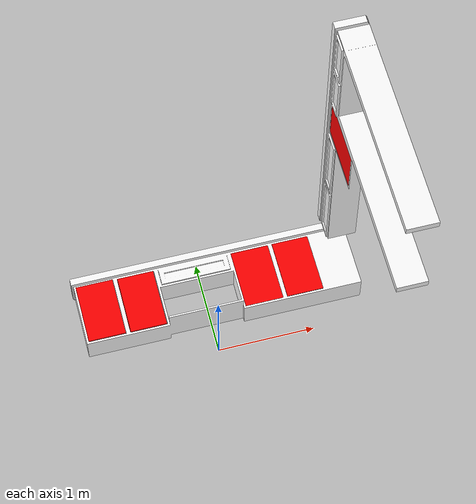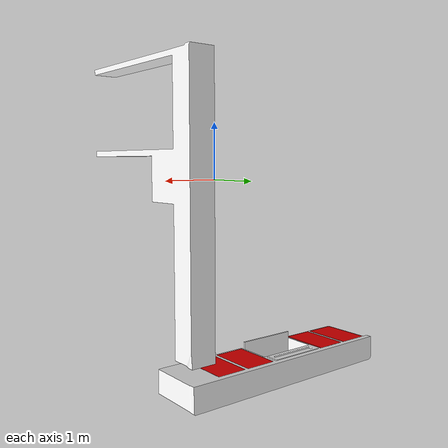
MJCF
<mujoco model="UpperCabinets_22fd18a8">
  <compiler autolimits="true" boundmass="0.01" angle="radian"/>
  <default>
    <default class="/">
      <default class="__VISUAL_MJT__">
        <geom contype="0" conaffinity="0" group="0" mass="1e-08"/>
      </default>
      <default class="__STRUCTURAL_MJT__">
        <geom contype="8" conaffinity="15" group="4" friction="0.90000000000000002 0.90000000000000002 0.001" density="500" solref="0.025000000000000001 1" solimp="0.998 0.998 0.001"/>
      </default>
      <default class="__DYNAMIC_MJT__">
        <geom contype="1" conaffinity="15" group="4" friction="0.90000000000000002 0.90000000000000002 0.001" density="500" solref="0.025000000000000001 1" solimp="0.998 0.998 0.001"/>
      </default>
      <default class="__ARTICULABLE_DYNAMIC_MJT__">
        <geom contype="0" conaffinity="7" group="4" friction="0.90000000000000002 0.90000000000000002 0.001" density="500" solref="0.025000000000000001 1" solimp="0.998 0.998 0.001"/>
      </default>
    </default>
  </default>
  <asset>
    <material name="material_WhiteWoodClean" class="/" specular="0.5" shininess="0.5" rgba="1 1 1 1"/>
    <mesh name="UpperCabinets_22fd18a8_UpperCabinets_22fd18a8" class="/" file="UpperCabinets_22fd18a8_UpperCabinets_22fd18a8/UpperCabinets_22fd18a8_UpperCabinets_22fd18a8.obj" scale="1 1 1" inertia="legacy"/>
  </asset>
  <worldbody>
    <body name="UpperCabinets_22fd18a8">
      <body name="UpperCabinets_22fd18a8_UpperCabinets_22fd18a8" pos="-0 0 0" quat="1 0 0 0">
        <geom name="UpperCabinets_22fd18a8_UpperCabinets_22fd18a8" class="__VISUAL_MJT__" type="mesh" material="material_WhiteWoodClean" mesh="UpperCabinets_22fd18a8_UpperCabinets_22fd18a8"/>
        <site name="UpperCabinets_22fd18a8_UpperCabinets_22fd18a8_Receptacle_0" class="/" type="box" rgba="1 0 0 1" size="0.22385676205158234 0.36528986692428589 0.14533472061157227" pos="-0.95181053876876831 2.0162899494171143 -2.6006653308868408" quat="0 1 0 0"/>
        <site name="UpperCabinets_22fd18a8_UpperCabinets_22fd18a8_Receptacle_1" class="/" type="box" rgba="1 0 0 1" size="0.21943353116512299 0.36130154132843018 0.14265561103820801" pos="-0.45112630724906921 2.0113015174865723 -2.596644401550293" quat="0 1 0 0"/>
        <site name="UpperCabinets_22fd18a8_UpperCabinets_22fd18a8_Receptacle_2" class="/" type="box" rgba="1 0 0 1" size="0.23100362718105316 0.36549067497253418 0.14396512508392334" pos="0.9558873176574707 2.0117907524108887 -2.6047348976135254" quat="0 1 0 0"/>
        <site name="UpperCabinets_22fd18a8_UpperCabinets_22fd18a8_Receptacle_3" class="/" type="box" rgba="1 0 0 1" size="0.2211918830871582 0.36378130316734314 0.14652752876281738" pos="1.4570145606994629 2.012099027633667 -2.6046090126037598" quat="0 1 0 0"/>
        <site name="UpperCabinets_22fd18a8_UpperCabinets_22fd18a8_Receptacle_4" class="/" type="box" rgba="1 0 0 1" size="0.28206542134284973 0.37078210711479187 0.14987480640411377" pos="2.0118317604064941 2.0093469619750977 0.10080169141292572" quat="0 0.70710678118654757 0 0.70710678118654757"/>
        <geom name="UpperCabinets_22fd18a8_UpperCabinets_22fd18a8_PrimitiveCollider_0" class="__DYNAMIC_MJT__" type="box" size="0.023277163505554199 0.37876635789871216 0.2889653742313385" rgba="0 1 0 1" pos="2.1670336723327637 2.0140774250030518 0.10151279717683792" quat="0 1 0 0"/>
        <geom name="UpperCabinets_22fd18a8_UpperCabinets_22fd18a8_PrimitiveCollider_1" class="__DYNAMIC_MJT__" type="box" size="0.17035567760467529 0.40167140960693359 0.02003788948059082" rgba="0 1 0 1" pos="2.0273337364196777 2.017939567565918 -0.18299999833106995" quat="0 1 0 0"/>
        <geom name="UpperCabinets_22fd18a8_UpperCabinets_22fd18a8_PrimitiveCollider_2" class="__DYNAMIC_MJT__" type="box" size="0.16783219575881958 0.016549214720726013 0.30587506294250488" rgba="0 1 0 1" pos="2.0224788188934326 1.628077507019043 0.10089156776666641" quat="0 1 0 0"/>
        <geom name="UpperCabinets_22fd18a8_UpperCabinets_22fd18a8_PrimitiveCollider_3" class="__DYNAMIC_MJT__" type="box" size="0.17035567760467529 1.0793757438659668 0.027918152511119843" rgba="0 1 0 1" pos="2.0273337364196777 1.0834207534790039 0.43566557765007019" quat="0 1 0 0"/>
        <geom name="UpperCabinets_22fd18a8_UpperCabinets_22fd18a8_PrimitiveCollider_4" class="__DYNAMIC_MJT__" type="box" size="0.17035567760467529 1.0793757438659668 0.027918152511119843" rgba="0 1 0 1" pos="2.0273337364196777 1.0834207534790039 1.6336655616760254" quat="0 1 0 0"/>
        <geom name="UpperCabinets_22fd18a8_UpperCabinets_22fd18a8_PrimitiveCollider_5" class="__DYNAMIC_MJT__" type="box" size="0.17799121141433716 0.052411410957574844 1.9639127254486084" rgba="0 1 0 1" pos="2.012319803237915 2.449049711227417 -0.25810611248016357" quat="0 1 0 0"/>
        <geom name="UpperCabinets_22fd18a8_UpperCabinets_22fd18a8_PrimitiveCollider_6" class="__DYNAMIC_MJT__" type="box" size="0.17035567760467529 0.40167140960693359 0.02003788948059082" rgba="0 1 0 1" pos="2.0273337364196777 2.017939567565918 0.3919999897480011" quat="0 1 0 0"/>
        <geom name="UpperCabinets_22fd18a8_UpperCabinets_22fd18a8_PrimitiveCollider_7" class="__DYNAMIC_MJT__" type="box" size="0.17035567760467529 0.15192303061485291 0.63417160511016846" rgba="0 1 0 1" pos="2.0273337364196777 2.2823057174682617 1.0329999923706055" quat="0 1 0 0"/>
        <geom name="UpperCabinets_22fd18a8_UpperCabinets_22fd18a8_PrimitiveCollider_8" class="__DYNAMIC_MJT__" type="box" size="0.013635814189910889 0.10573065280914307 0.29535883665084839" rgba="0 1 0 1" pos="1.8530000448226929 2.2650001049041748 0.72000002861022949" quat="0 1 0 0"/>
        <geom name="UpperCabinets_22fd18a8_UpperCabinets_22fd18a8_PrimitiveCollider_9" class="__DYNAMIC_MJT__" type="box" size="0.013635814189910889 0.10573065280914307 0.29535883665084839" rgba="0 1 0 1" pos="1.8530000448226929 2.2650001049041748 1.3600000143051147" quat="0 1 0 0"/>
        <geom name="UpperCabinets_22fd18a8_UpperCabinets_22fd18a8_PrimitiveCollider_10" class="__DYNAMIC_MJT__" type="box" size="0.17035567760467529 0.14653113484382629 0.99540209770202637" rgba="0 1 0 1" pos="2.0273337364196777 2.2876975536346436 -1.1891199350357056" quat="0 1 0 0"/>
        <geom name="UpperCabinets_22fd18a8_UpperCabinets_22fd18a8_PrimitiveCollider_11" class="__DYNAMIC_MJT__" type="box" size="0.013635814189910889 0.11112076044082642 0.47570508718490601" rgba="0 1 0 1" pos="1.8530000448226929 2.2703902721405029 -1.6926407814025879" quat="0 1 0 0"/>
        <geom name="UpperCabinets_22fd18a8_UpperCabinets_22fd18a8_PrimitiveCollider_12" class="__DYNAMIC_MJT__" type="box" size="0.013635814189910889 0.11130094528198242 0.48252001404762268" rgba="0 1 0 1" pos="1.8530000448226929 2.2729377746582031 -0.70174312591552734" quat="0 1 0 0"/>
        <geom name="UpperCabinets_22fd18a8_UpperCabinets_22fd18a8_PrimitiveCollider_13" class="__DYNAMIC_MJT__" type="box" size="1.695914626121521 0.052411410957574844 0.183349609375" rgba="0 1 0 1" pos="0.47057637572288513 2.4430000782012939 -2.6187894344329834" quat="0 1 0 0"/>
        <geom name="UpperCabinets_22fd18a8_UpperCabinets_22fd18a8_PrimitiveCollider_14" class="__DYNAMIC_MJT__" type="box" size="0.45952942967414856 0.012195050716400146 0.22846126556396484" rgba="0 1 0 1" pos="0.25232124328613281 1.6782426834106445 -2.5736777782440186" quat="0 1 0 0"/>
        <geom name="UpperCabinets_22fd18a8_UpperCabinets_22fd18a8_PrimitiveCollider_15" class="__DYNAMIC_MJT__" type="box" size="0.48532035946846008 0.01194608211517334 0.17127764225006104" rgba="0 1 0 1" pos="-0.69958841800689697 1.6334916353225708 -2.6308612823486328" quat="0 1 0 0"/>
        <geom name="UpperCabinets_22fd18a8_UpperCabinets_22fd18a8_PrimitiveCollider_16" class="__DYNAMIC_MJT__" type="box" size="0.48532035946846008 0.01194608211517334 0.17127764225006104" rgba="0 1 0 1" pos="1.1984115839004517 1.6334916353225708 -2.6308612823486328" quat="0 1 0 0"/>
        <geom name="UpperCabinets_22fd18a8_UpperCabinets_22fd18a8_PrimitiveCollider_17" class="__DYNAMIC_MJT__" type="box" size="0.49058258533477783 0.39212411642074585 0.029196977615356445" rgba="0 1 0 1" pos="-0.70273774862289429 2.0205650329589844 -2.772942066192627" quat="0 1 0 0"/>
        <geom name="UpperCabinets_22fd18a8_UpperCabinets_22fd18a8_PrimitiveCollider_18" class="__DYNAMIC_MJT__" type="box" size="0.014868631958961487 0.38949295878410339 0.17127764225006104" rgba="0 1 0 1" pos="-1.1859999895095825 2.0139999389648438 -2.6289999485015869" quat="0 1 0 0"/>
        <geom name="UpperCabinets_22fd18a8_UpperCabinets_22fd18a8_PrimitiveCollider_19" class="__DYNAMIC_MJT__" type="box" size="0.028875477612018585 0.38949295878410339 0.17127764225006104" rgba="0 1 0 1" pos="-0.70199316740036011 2.0139999389648438 -2.6289999485015869" quat="0 1 0 0"/>
        <geom name="UpperCabinets_22fd18a8_UpperCabinets_22fd18a8_PrimitiveCollider_20" class="__DYNAMIC_MJT__" type="box" size="0.014868631958961487 0.38949295878410339 0.17127764225006104" rgba="0 1 0 1" pos="-0.2160000205039978 2.0139999389648438 -2.6289999485015869" quat="0 1 0 0"/>
        <geom name="UpperCabinets_22fd18a8_UpperCabinets_22fd18a8_PrimitiveCollider_21" class="__DYNAMIC_MJT__" type="box" size="0.49058258533477783 0.39212411642074585 0.029196977615356445" rgba="0 1 0 1" pos="1.1962622404098511 2.0205650329589844 -2.772942066192627" quat="0 1 0 0"/>
        <geom name="UpperCabinets_22fd18a8_UpperCabinets_22fd18a8_PrimitiveCollider_22" class="__DYNAMIC_MJT__" type="box" size="0.014868631958961487 0.38949295878410339 0.17127764225006104" rgba="0 1 0 1" pos="0.71299993991851807 2.0139999389648438 -2.6289999485015869" quat="0 1 0 0"/>
        <geom name="UpperCabinets_22fd18a8_UpperCabinets_22fd18a8_PrimitiveCollider_23" class="__DYNAMIC_MJT__" type="box" size="0.028875477612018585 0.38949295878410339 0.17127764225006104" rgba="0 1 0 1" pos="1.2070068120956421 2.0139999389648438 -2.6289999485015869" quat="0 1 0 0"/>
        <geom name="UpperCabinets_22fd18a8_UpperCabinets_22fd18a8_PrimitiveCollider_24" class="__DYNAMIC_MJT__" type="box" size="0.23436194658279419 0.38949295878410339 0.17127764225006104" rgba="0 1 0 1" pos="1.9087977409362793 2.0139999389648438 -2.6289999485015869" quat="0 1 0 0"/>
        <geom name="UpperCabinets_22fd18a8_UpperCabinets_22fd18a8_PrimitiveCollider_25" class="__DYNAMIC_MJT__" type="box" size="0.45952942967414856 0.13148185610771179 0.1711573600769043" rgba="0 1 0 1" pos="0.25232124328613281 2.2692427635192871 -2.6309816837310791" quat="0 1 0 0"/>
        <geom name="UpperCabinets_22fd18a8_UpperCabinets_22fd18a8_PrimitiveCollider_26" class="__DYNAMIC_MJT__" type="box" size="0.42371606826782227 0.10824939608573914 0.14091435074806213" rgba="0 1 0 1" pos="0.25232124328613281 2.2692427635192871 -2.6309816837310791" quat="0 1 0 0"/>
      </body>
    </body>
  </worldbody>
</mujoco>
